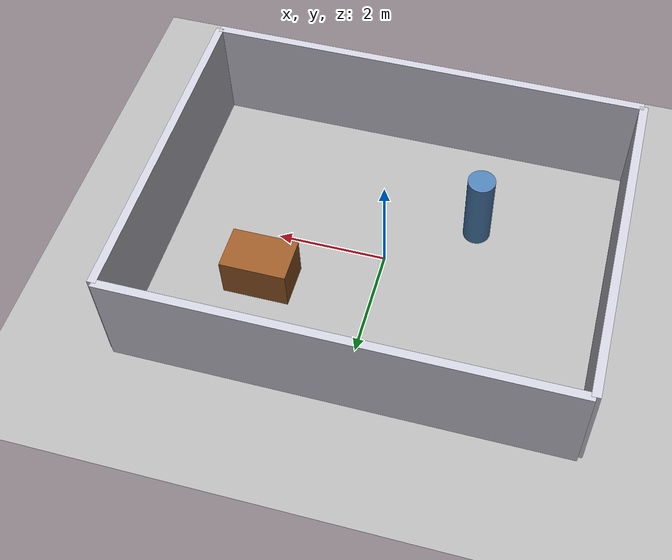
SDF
<?xml version="1.0" ?>
<sdf version="1.6">
  <world name="gracemo_indoor_world">

    <physics name="1ms" type="ignored">
      <max_step_size>0.001</max_step_size>
      <real_time_factor>1.0</real_time_factor>
    </physics>

    <!-- Standard Perspective View Camera (No ultra-wide fisheye distortion) -->
    <gui fullscreen="0">
      <camera name="user_camera">
        <pose>2.2 -2.5 1.8 0 0.40 2.2</pose>
        <view_controller>orbit</view_controller>
        <projection_type>perspective</projection_type>
      </camera>
    </gui>

    <!-- Built-in Sun Light -->
    <light type="directional" name="sun">
      <cast_shadows>true</cast_shadows>
      <pose>0 0 10 0 0 0</pose>
      <diffuse>0.8 0.8 0.8 1</diffuse>
      <specular>0.2 0.2 0.2 1</specular>
      <attenuation>
        <range>1000</range>
        <constant>0.9</constant>
        <linear>0.01</linear>
        <quadratic>0.001</quadratic>
      </attenuation>
      <direction>-0.5 0.1 -0.9</direction>
    </light>

    <!-- Built-in Ground Plane (Self-contained, zero internet dependencies) -->
    <model name="ground_plane">
      <static>true</static>
      <link name="link">
        <collision name="collision">
          <geometry>
            <plane>
              <normal>0 0 1</normal>
              <size>100 100</size>
            </plane>
          </geometry>
        </collision>
        <visual name="visual">
          <geometry>
            <plane>
              <normal>0 0 1</normal>
              <size>100 100</size>
            </plane>
          </geometry>
          <material>
            <ambient>0.7 0.7 0.7 1</ambient>
            <diffuse>0.7 0.7 0.7 1</diffuse>
            <specular>0.2 0.2 0.2 1</specular>
          </material>
        </visual>
      </link>
    </model>

    <!-- Enclosed Room Walls (8m x 6m room) -->
    <model name="north_wall">
      <static>true</static>
      <pose>0 3.0 1.0 0 0 0</pose>
      <link name="link">
        <collision name="collision">
          <geometry><box><size>8.0 0.15 2.0</size></box></geometry>
        </collision>
        <visual name="visual">
          <geometry><box><size>8.0 0.15 2.0</size></box></geometry>
          <material><ambient>0.8 0.8 0.85 1</ambient><diffuse>0.8 0.8 0.85 1</diffuse></material>
        </visual>
      </link>
    </model>

    <model name="south_wall">
      <static>true</static>
      <pose>0 -3.0 1.0 0 0 0</pose>
      <link name="link">
        <collision name="collision">
          <geometry><box><size>8.0 0.15 2.0</size></box></geometry>
        </collision>
        <visual name="visual">
          <geometry><box><size>8.0 0.15 2.0</size></box></geometry>
          <material><ambient>0.8 0.8 0.85 1</ambient><diffuse>0.8 0.8 0.85 1</diffuse></material>
        </visual>
      </link>
    </model>

    <model name="east_wall">
      <static>true</static>
      <pose>4.0 0 1.0 0 0 0</pose>
      <link name="link">
        <collision name="collision">
          <geometry><box><size>0.15 6.0 2.0</size></box></geometry>
        </collision>
        <visual name="visual">
          <geometry><box><size>0.15 6.0 2.0</size></box></geometry>
          <material><ambient>0.8 0.8 0.85 1</ambient><diffuse>0.8 0.8 0.85 1</diffuse></material>
        </visual>
      </link>
    </model>

    <model name="west_wall">
      <static>true</static>
      <pose>-4.0 0 1.0 0 0 0</pose>
      <link name="link">
        <collision name="collision">
          <geometry><box><size>0.15 6.0 2.0</size></box></geometry>
        </collision>
        <visual name="visual">
          <geometry><box><size>0.15 6.0 2.0</size></box></geometry>
          <material><ambient>0.8 0.8 0.85 1</ambient><diffuse>0.8 0.8 0.85 1</diffuse></material>
        </visual>
      </link>
    </model>

    <!-- Table Obstacle -->
    <model name="room_table">
      <static>true</static>
      <pose>2.0 1.0 0.4 0 0 0</pose>
      <link name="link">
        <collision name="collision">
          <geometry><box><size>1.2 0.8 0.8</size></box></geometry>
        </collision>
        <visual name="visual">
          <geometry><box><size>1.2 0.8 0.8</size></box></geometry>
          <material><ambient>0.5 0.3 0.1 1</ambient><diffuse>0.6 0.35 0.15 1</diffuse></material>
        </visual>
      </link>
    </model>

    <!-- Pillar / Obstacle -->
    <model name="room_pillar">
      <static>true</static>
      <pose>-1.5 -1.0 0.75 0 0 0</pose>
      <link name="link">
        <collision name="collision">
          <geometry><cylinder><radius>0.25</radius><length>1.5</length></cylinder></geometry>
        </collision>
        <visual name="visual">
          <geometry><cylinder><radius>0.25</radius><length>1.5</length></cylinder></geometry>
          <material><ambient>0.3 0.5 0.7 1</ambient><diffuse>0.3 0.5 0.7 1</diffuse></material>
        </visual>
      </link>
    </model>

  </world>
</sdf>
